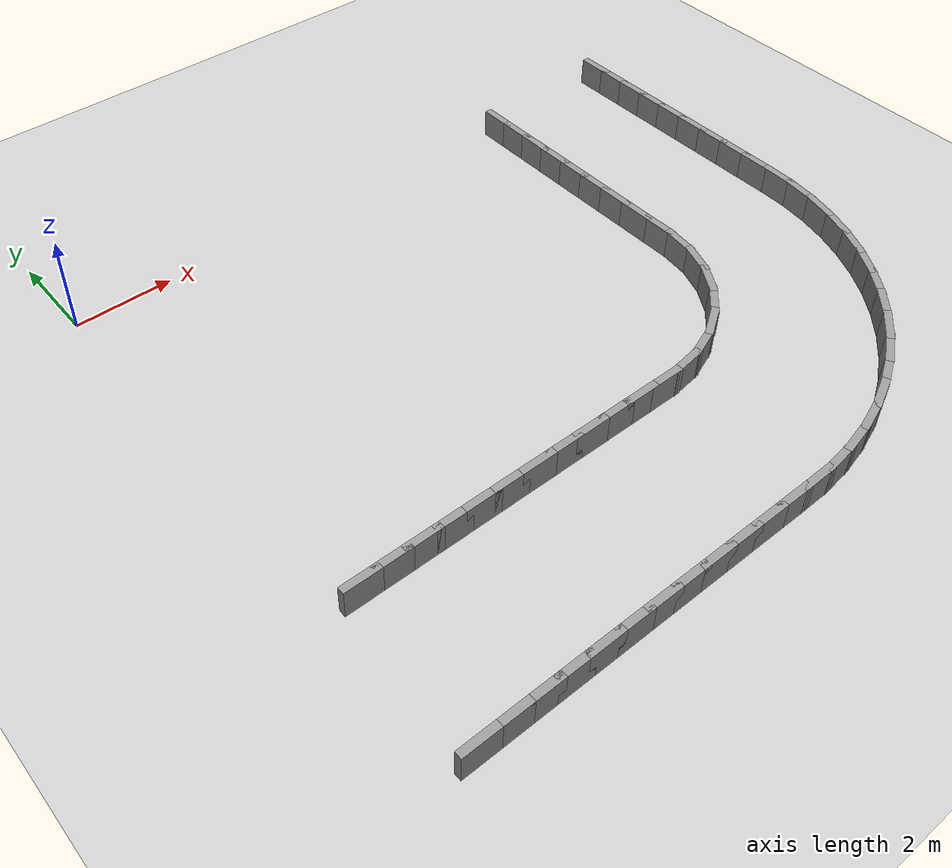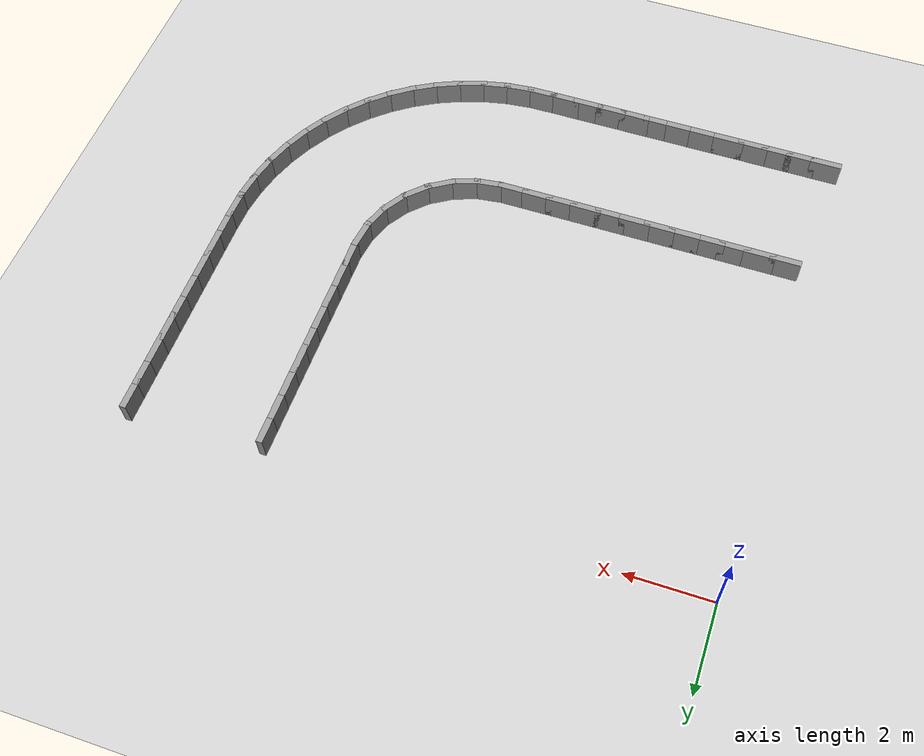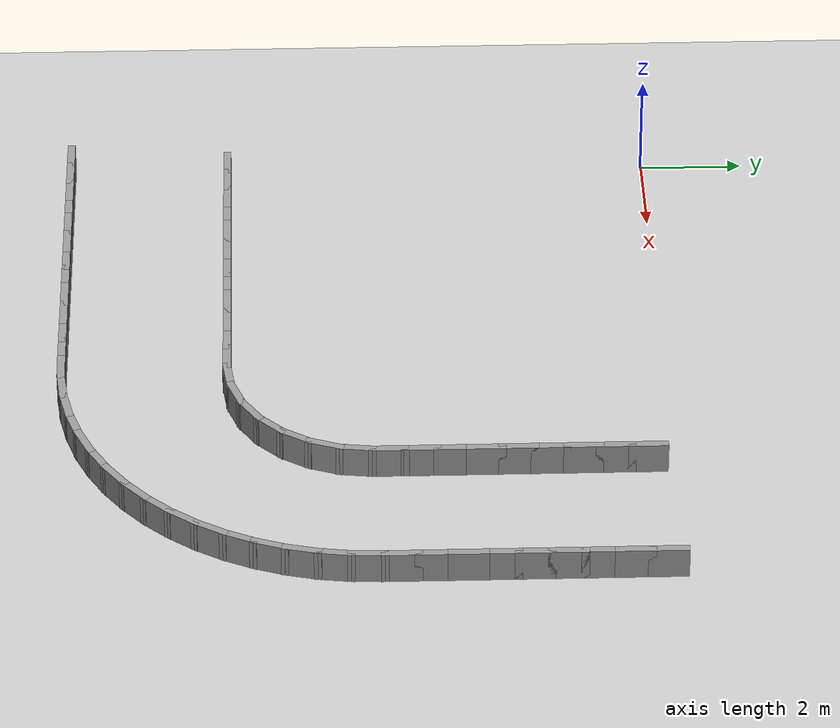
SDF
<sdf version="1.7">
 <world name="default">
  <model name="ground_plane">
   <static>1</static>
   <link name="link">
    <collision name="collision">
     <geometry><plane><normal>0 0 1</normal><size>100 100</size></plane></geometry>
     <surface><friction><ode><mu>100</mu><mu2>50</mu2></ode></friction></surface>
    </collision>
    <visual name="visual">
     <cast_shadows>0</cast_shadows>
     <geometry><plane><normal>0 0 1</normal><size>100 100</size></plane></geometry>
     <material>
      <script><uri>file://media/materials/scripts/gazebo.material</uri><name>Gazebo/Grey</name></script>
     </material>
    </visual>
   </link>
  </model>
  <model name="rand_rrect_01">
   <link name="Wall_77">
    <collision name="Wall_77_Collision">
     <geometry><box><size>0.7500 0.1500 0.6000</size></box></geometry>
     <pose>0 0 0.3000 0 -0 0</pose>
    </collision>
    <visual name="Wall_77_Visual">
     <pose>0 0 0.3000 0 -0 0</pose>
     <geometry><box><size>0.7500 0.1500 0.6000</size></box></geometry>
     <material>
      <script><uri>file://media/materials/scripts/gazebo.material</uri><name>Gazebo/Grey</name></script>
      <ambient>1 1 1 1</ambient>
     </material>
    </visual>
    <pose>0.4717 -8.3232 0 0 -0 0.00000</pose>
   </link>
   <link name="Wall_78">
    <collision name="Wall_78_Collision">
     <geometry><box><size>0.7500 0.1500 0.6000</size></box></geometry>
     <pose>0 0 0.3000 0 -0 0</pose>
    </collision>
    <visual name="Wall_78_Visual">
     <pose>0 0 0.3000 0 -0 0</pose>
     <geometry><box><size>0.7500 0.1500 0.6000</size></box></geometry>
     <material>
      <script><uri>file://media/materials/scripts/gazebo.material</uri><name>Gazebo/Grey</name></script>
      <ambient>1 1 1 1</ambient>
     </material>
    </visual>
    <pose>1.0717 -8.3232 0 0 -0 0.00000</pose>
   </link>
   <link name="Wall_79">
    <collision name="Wall_79_Collision">
     <geometry><box><size>0.7500 0.1500 0.6000</size></box></geometry>
     <pose>0 0 0.3000 0 -0 0</pose>
    </collision>
    <visual name="Wall_79_Visual">
     <pose>0 0 0.3000 0 -0 0</pose>
     <geometry><box><size>0.7500 0.1500 0.6000</size></box></geometry>
     <material>
      <script><uri>file://media/materials/scripts/gazebo.material</uri><name>Gazebo/Grey</name></script>
      <ambient>1 1 1 1</ambient>
     </material>
    </visual>
    <pose>1.6717 -8.3232 0 0 -0 0.00000</pose>
   </link>
   <link name="Wall_80">
    <collision name="Wall_80_Collision">
     <geometry><box><size>0.7500 0.1500 0.6000</size></box></geometry>
     <pose>0 0 0.3000 0 -0 0</pose>
    </collision>
    <visual name="Wall_80_Visual">
     <pose>0 0 0.3000 0 -0 0</pose>
     <geometry><box><size>0.7500 0.1500 0.6000</size></box></geometry>
     <material>
      <script><uri>file://media/materials/scripts/gazebo.material</uri><name>Gazebo/Grey</name></script>
      <ambient>1 1 1 1</ambient>
     </material>
    </visual>
    <pose>2.2717 -8.3232 0 0 -0 0.00000</pose>
   </link>
   <link name="Wall_81">
    <collision name="Wall_81_Collision">
     <geometry><box><size>0.7500 0.1500 0.6000</size></box></geometry>
     <pose>0 0 0.3000 0 -0 0</pose>
    </collision>
    <visual name="Wall_81_Visual">
     <pose>0 0 0.3000 0 -0 0</pose>
     <geometry><box><size>0.7500 0.1500 0.6000</size></box></geometry>
     <material>
      <script><uri>file://media/materials/scripts/gazebo.material</uri><name>Gazebo/Grey</name></script>
      <ambient>1 1 1 1</ambient>
     </material>
    </visual>
    <pose>2.8717 -8.3232 0 0 -0 0.00000</pose>
   </link>
   <link name="Wall_82">
    <collision name="Wall_82_Collision">
     <geometry><box><size>0.7500 0.1500 0.6000</size></box></geometry>
     <pose>0 0 0.3000 0 -0 0</pose>
    </collision>
    <visual name="Wall_82_Visual">
     <pose>0 0 0.3000 0 -0 0</pose>
     <geometry><box><size>0.7500 0.1500 0.6000</size></box></geometry>
     <material>
      <script><uri>file://media/materials/scripts/gazebo.material</uri><name>Gazebo/Grey</name></script>
      <ambient>1 1 1 1</ambient>
     </material>
    </visual>
    <pose>3.4717 -8.3232 0 0 -0 0.00000</pose>
   </link>
   <link name="Wall_83">
    <collision name="Wall_83_Collision">
     <geometry><box><size>0.7500 0.1500 0.6000</size></box></geometry>
     <pose>0 0 0.3000 0 -0 0</pose>
    </collision>
    <visual name="Wall_83_Visual">
     <pose>0 0 0.3000 0 -0 0</pose>
     <geometry><box><size>0.7500 0.1500 0.6000</size></box></geometry>
     <material>
      <script><uri>file://media/materials/scripts/gazebo.material</uri><name>Gazebo/Grey</name></script>
      <ambient>1 1 1 1</ambient>
     </material>
    </visual>
    <pose>4.0717 -8.3232 0 0 -0 0.00000</pose>
   </link>
   <link name="Wall_84">
    <collision name="Wall_84_Collision">
     <geometry><box><size>0.7500 0.1500 0.6000</size></box></geometry>
     <pose>0 0 0.3000 0 -0 0</pose>
    </collision>
    <visual name="Wall_84_Visual">
     <pose>0 0 0.3000 0 -0 0</pose>
     <geometry><box><size>0.7500 0.1500 0.6000</size></box></geometry>
     <material>
      <script><uri>file://media/materials/scripts/gazebo.material</uri><name>Gazebo/Grey</name></script>
      <ambient>1 1 1 1</ambient>
     </material>
    </visual>
    <pose>4.6717 -8.3232 0 0 -0 0.00000</pose>
   </link>
   <link name="Wall_85">
    <collision name="Wall_85_Collision">
     <geometry><box><size>0.7500 0.1500 0.6000</size></box></geometry>
     <pose>0 0 0.3000 0 -0 0</pose>
    </collision>
    <visual name="Wall_85_Visual">
     <pose>0 0 0.3000 0 -0 0</pose>
     <geometry><box><size>0.7500 0.1500 0.6000</size></box></geometry>
     <material>
      <script><uri>file://media/materials/scripts/gazebo.material</uri><name>Gazebo/Grey</name></script>
      <ambient>1 1 1 1</ambient>
     </material>
    </visual>
    <pose>5.2717 -8.3232 0 0 -0 0.00000</pose>
   </link>
   <link name="Wall_86">
    <collision name="Wall_86_Collision">
     <geometry><box><size>0.7500 0.1500 0.6000</size></box></geometry>
     <pose>0 0 0.3000 0 -0 0</pose>
    </collision>
    <visual name="Wall_86_Visual">
     <pose>0 0 0.3000 0 -0 0</pose>
     <geometry><box><size>0.7500 0.1500 0.6000</size></box></geometry>
     <material>
      <script><uri>file://media/materials/scripts/gazebo.material</uri><name>Gazebo/Grey</name></script>
      <ambient>1 1 1 1</ambient>
     </material>
    </visual>
    <pose>5.8717 -8.3232 0 0 -0 0.00000</pose>
   </link>
   <link name="Wall_87">
    <collision name="Wall_87_Collision">
     <geometry><box><size>0.7500 0.1500 0.6000</size></box></geometry>
     <pose>0 0 0.3000 0 -0 0</pose>
    </collision>
    <visual name="Wall_87_Visual">
     <pose>0 0 0.3000 0 -0 0</pose>
     <geometry><box><size>0.7500 0.1500 0.6000</size></box></geometry>
     <material>
      <script><uri>file://media/materials/scripts/gazebo.material</uri><name>Gazebo/Grey</name></script>
      <ambient>1 1 1 1</ambient>
     </material>
    </visual>
    <pose>6.4717 -8.3232 0 0 -0 0.00000</pose>
   </link>
   <link name="Wall_88">
    <collision name="Wall_88_Collision">
     <geometry><box><size>0.7500 0.1500 0.6000</size></box></geometry>
     <pose>0 0 0.3000 0 -0 0</pose>
    </collision>
    <visual name="Wall_88_Visual">
     <pose>0 0 0.3000 0 -0 0</pose>
     <geometry><box><size>0.7500 0.1500 0.6000</size></box></geometry>
     <material>
      <script><uri>file://media/materials/scripts/gazebo.material</uri><name>Gazebo/Grey</name></script>
      <ambient>1 1 1 1</ambient>
     </material>
    </visual>
    <pose>7.0717 -8.3230 0 0 -0 0.00093</pose>
   </link>
   <link name="Wall_89">
    <collision name="Wall_89_Collision">
     <geometry><box><size>0.7488 0.1500 0.6000</size></box></geometry>
     <pose>0 0 0.3000 0 -0 0</pose>
    </collision>
    <visual name="Wall_89_Visual">
     <pose>0 0 0.3000 0 -0 0</pose>
     <geometry><box><size>0.7488 0.1500 0.6000</size></box></geometry>
     <material>
      <script><uri>file://media/materials/scripts/gazebo.material</uri><name>Gazebo/Grey</name></script>
      <ambient>1 1 1 1</ambient>
     </material>
    </visual>
    <pose>7.6686 -8.2840 0 0 -0 0.12955</pose>
   </link>
   <link name="Wall_90">
    <collision name="Wall_90_Collision">
     <geometry><box><size>0.7488 0.1500 0.6000</size></box></geometry>
     <pose>0 0 0.3000 0 -0 0</pose>
    </collision>
    <visual name="Wall_90_Visual">
     <pose>0 0 0.3000 0 -0 0</pose>
     <geometry><box><size>0.7488 0.1500 0.6000</size></box></geometry>
     <material>
      <script><uri>file://media/materials/scripts/gazebo.material</uri><name>Gazebo/Grey</name></script>
      <ambient>1 1 1 1</ambient>
     </material>
    </visual>
    <pose>8.2469 -8.1431 0 0 -0 0.34855</pose>
   </link>
   <link name="Wall_91">
    <collision name="Wall_91_Collision">
     <geometry><box><size>0.7488 0.1500 0.6000</size></box></geometry>
     <pose>0 0 0.3000 0 -0 0</pose>
    </collision>
    <visual name="Wall_91_Visual">
     <pose>0 0 0.3000 0 -0 0</pose>
     <geometry><box><size>0.7488 0.1500 0.6000</size></box></geometry>
     <material>
      <script><uri>file://media/materials/scripts/gazebo.material</uri><name>Gazebo/Grey</name></script>
      <ambient>1 1 1 1</ambient>
     </material>
    </visual>
    <pose>8.7808 -7.8799 0 0 -0 0.56755</pose>
   </link>
   <link name="Wall_92">
    <collision name="Wall_92_Collision">
     <geometry><box><size>0.7488 0.1500 0.6000</size></box></geometry>
     <pose>0 0 0.3000 0 -0 0</pose>
    </collision>
    <visual name="Wall_92_Visual">
     <pose>0 0 0.3000 0 -0 0</pose>
     <geometry><box><size>0.7488 0.1500 0.6000</size></box></geometry>
     <material>
      <script><uri>file://media/materials/scripts/gazebo.material</uri><name>Gazebo/Grey</name></script>
      <ambient>1 1 1 1</ambient>
     </material>
    </visual>
    <pose>9.2447 -7.5070 0 0 -0 0.78653</pose>
   </link>
   <link name="Wall_93">
    <collision name="Wall_93_Collision">
     <geometry><box><size>0.7488 0.1500 0.6000</size></box></geometry>
     <pose>0 0 0.3000 0 -0 0</pose>
    </collision>
    <visual name="Wall_93_Visual">
     <pose>0 0 0.3000 0 -0 0</pose>
     <geometry><box><size>0.7488 0.1500 0.6000</size></box></geometry>
     <material>
      <script><uri>file://media/materials/scripts/gazebo.material</uri><name>Gazebo/Grey</name></script>
      <ambient>1 1 1 1</ambient>
     </material>
    </visual>
    <pose>9.6165 -7.0422 0 0 -0 1.00553</pose>
   </link>
   <link name="Wall_94">
    <collision name="Wall_94_Collision">
     <geometry><box><size>0.7488 0.1500 0.6000</size></box></geometry>
     <pose>0 0 0.3000 0 -0 0</pose>
    </collision>
    <visual name="Wall_94_Visual">
     <pose>0 0 0.3000 0 -0 0</pose>
     <geometry><box><size>0.7488 0.1500 0.6000</size></box></geometry>
     <material>
      <script><uri>file://media/materials/scripts/gazebo.material</uri><name>Gazebo/Grey</name></script>
      <ambient>1 1 1 1</ambient>
     </material>
    </visual>
    <pose>9.8785 -6.5077 0 0 -0 1.22452</pose>
   </link>
   <link name="Wall_95">
    <collision name="Wall_95_Collision">
     <geometry><box><size>0.7488 0.1500 0.6000</size></box></geometry>
     <pose>0 0 0.3000 0 -0 0</pose>
    </collision>
    <visual name="Wall_95_Visual">
     <pose>0 0 0.3000 0 -0 0</pose>
     <geometry><box><size>0.7488 0.1500 0.6000</size></box></geometry>
     <material>
      <script><uri>file://media/materials/scripts/gazebo.material</uri><name>Gazebo/Grey</name></script>
      <ambient>1 1 1 1</ambient>
     </material>
    </visual>
    <pose>10.0181 -5.9291 0 0 -0 1.44351</pose>
   </link>
   <link name="Wall_96">
    <collision name="Wall_96_Collision">
     <geometry><box><size>0.7500 0.1500 0.6000</size></box></geometry>
     <pose>0 0 0.3000 0 -0 0</pose>
    </collision>
    <visual name="Wall_96_Visual">
     <pose>0 0 0.3000 0 -0 0</pose>
     <geometry><box><size>0.7500 0.1500 0.6000</size></box></geometry>
     <material>
      <script><uri>file://media/materials/scripts/gazebo.material</uri><name>Gazebo/Grey</name></script>
      <ambient>1 1 1 1</ambient>
     </material>
    </visual>
    <pose>10.0564 -5.3322 0 0 -0 1.57007</pose>
   </link>
   <link name="Wall_97">
    <collision name="Wall_97_Collision">
     <geometry><box><size>0.7500 0.1500 0.6000</size></box></geometry>
     <pose>0 0 0.3000 0 -0 0</pose>
    </collision>
    <visual name="Wall_97_Visual">
     <pose>0 0 0.3000 0 -0 0</pose>
     <geometry><box><size>0.7500 0.1500 0.6000</size></box></geometry>
     <material>
      <script><uri>file://media/materials/scripts/gazebo.material</uri><name>Gazebo/Grey</name></script>
      <ambient>1 1 1 1</ambient>
     </material>
    </visual>
    <pose>10.0566 -4.7322 0 0 -0 1.57080</pose>
   </link>
   <link name="Wall_98">
    <collision name="Wall_98_Collision">
     <geometry><box><size>0.7500 0.1500 0.6000</size></box></geometry>
     <pose>0 0 0.3000 0 -0 0</pose>
    </collision>
    <visual name="Wall_98_Visual">
     <pose>0 0 0.3000 0 -0 0</pose>
     <geometry><box><size>0.7500 0.1500 0.6000</size></box></geometry>
     <material>
      <script><uri>file://media/materials/scripts/gazebo.material</uri><name>Gazebo/Grey</name></script>
      <ambient>1 1 1 1</ambient>
     </material>
    </visual>
    <pose>10.0566 -4.1322 0 0 -0 1.57080</pose>
   </link>
   <link name="Wall_99">
    <collision name="Wall_99_Collision">
     <geometry><box><size>0.7500 0.1500 0.6000</size></box></geometry>
     <pose>0 0 0.3000 0 -0 0</pose>
    </collision>
    <visual name="Wall_99_Visual">
     <pose>0 0 0.3000 0 -0 0</pose>
     <geometry><box><size>0.7500 0.1500 0.6000</size></box></geometry>
     <material>
      <script><uri>file://media/materials/scripts/gazebo.material</uri><name>Gazebo/Grey</name></script>
      <ambient>1 1 1 1</ambient>
     </material>
    </visual>
    <pose>10.0566 -3.5322 0 0 -0 1.57080</pose>
   </link>
   <link name="Wall_100">
    <collision name="Wall_100_Collision">
     <geometry><box><size>0.7500 0.1500 0.6000</size></box></geometry>
     <pose>0 0 0.3000 0 -0 0</pose>
    </collision>
    <visual name="Wall_100_Visual">
     <pose>0 0 0.3000 0 -0 0</pose>
     <geometry><box><size>0.7500 0.1500 0.6000</size></box></geometry>
     <material>
      <script><uri>file://media/materials/scripts/gazebo.material</uri><name>Gazebo/Grey</name></script>
      <ambient>1 1 1 1</ambient>
     </material>
    </visual>
    <pose>10.0566 -2.9322 0 0 -0 1.57080</pose>
   </link>
   <link name="Wall_101">
    <collision name="Wall_101_Collision">
     <geometry><box><size>0.7500 0.1500 0.6000</size></box></geometry>
     <pose>0 0 0.3000 0 -0 0</pose>
    </collision>
    <visual name="Wall_101_Visual">
     <pose>0 0 0.3000 0 -0 0</pose>
     <geometry><box><size>0.7500 0.1500 0.6000</size></box></geometry>
     <material>
      <script><uri>file://media/materials/scripts/gazebo.material</uri><name>Gazebo/Grey</name></script>
      <ambient>1 1 1 1</ambient>
     </material>
    </visual>
    <pose>10.0566 -2.3322 0 0 -0 1.57080</pose>
   </link>
   <link name="Wall_102">
    <collision name="Wall_102_Collision">
     <geometry><box><size>0.7500 0.1500 0.6000</size></box></geometry>
     <pose>0 0 0.3000 0 -0 0</pose>
    </collision>
    <visual name="Wall_102_Visual">
     <pose>0 0 0.3000 0 -0 0</pose>
     <geometry><box><size>0.7500 0.1500 0.6000</size></box></geometry>
     <material>
      <script><uri>file://media/materials/scripts/gazebo.material</uri><name>Gazebo/Grey</name></script>
      <ambient>1 1 1 1</ambient>
     </material>
    </visual>
    <pose>10.0566 -1.7322 0 0 -0 1.57080</pose>
   </link>
   <link name="Wall_103">
    <collision name="Wall_103_Collision">
     <geometry><box><size>0.7500 0.1500 0.6000</size></box></geometry>
     <pose>0 0 0.3000 0 -0 0</pose>
    </collision>
    <visual name="Wall_103_Visual">
     <pose>0 0 0.3000 0 -0 0</pose>
     <geometry><box><size>0.7500 0.1500 0.6000</size></box></geometry>
     <material>
      <script><uri>file://media/materials/scripts/gazebo.material</uri><name>Gazebo/Grey</name></script>
      <ambient>1 1 1 1</ambient>
     </material>
    </visual>
    <pose>10.0566 -1.1322 0 0 -0 1.57080</pose>
   </link>
   <link name="Wall_104">
    <collision name="Wall_104_Collision">
     <geometry><box><size>0.7500 0.1500 0.6000</size></box></geometry>
     <pose>0 0 0.3000 0 -0 0</pose>
    </collision>
    <visual name="Wall_104_Visual">
     <pose>0 0 0.3000 0 -0 0</pose>
     <geometry><box><size>0.7500 0.1500 0.6000</size></box></geometry>
     <material>
      <script><uri>file://media/materials/scripts/gazebo.material</uri><name>Gazebo/Grey</name></script>
      <ambient>1 1 1 1</ambient>
     </material>
    </visual>
    <pose>10.0566 -0.5322 0 0 -0 1.57080</pose>
   </link>
   <link name="Wall_215">
    <collision name="Wall_215_Collision">
     <geometry><box><size>0.7500 0.1500 0.6000</size></box></geometry>
     <pose>0 0 0.3000 0 -0 0</pose>
    </collision>
    <visual name="Wall_215_Visual">
     <pose>0 0 0.3000 0 -0 0</pose>
     <geometry><box><size>0.7500 0.1500 0.6000</size></box></geometry>
     <material>
      <script><uri>file://media/materials/scripts/gazebo.material</uri><name>Gazebo/Grey</name></script>
      <ambient>1 1 1 1</ambient>
     </material>
    </visual>
    <pose>0.1410 -11.4492 0 0 -0 0.00000</pose>
   </link>
   <link name="Wall_216">
    <collision name="Wall_216_Collision">
     <geometry><box><size>0.7500 0.1500 0.6000</size></box></geometry>
     <pose>0 0 0.3000 0 -0 0</pose>
    </collision>
    <visual name="Wall_216_Visual">
     <pose>0 0 0.3000 0 -0 0</pose>
     <geometry><box><size>0.7500 0.1500 0.6000</size></box></geometry>
     <material>
      <script><uri>file://media/materials/scripts/gazebo.material</uri><name>Gazebo/Grey</name></script>
      <ambient>1 1 1 1</ambient>
     </material>
    </visual>
    <pose>0.7410 -11.4492 0 0 -0 0.00000</pose>
   </link>
   <link name="Wall_217">
    <collision name="Wall_217_Collision">
     <geometry><box><size>0.7500 0.1500 0.6000</size></box></geometry>
     <pose>0 0 0.3000 0 -0 0</pose>
    </collision>
    <visual name="Wall_217_Visual">
     <pose>0 0 0.3000 0 -0 0</pose>
     <geometry><box><size>0.7500 0.1500 0.6000</size></box></geometry>
     <material>
      <script><uri>file://media/materials/scripts/gazebo.material</uri><name>Gazebo/Grey</name></script>
      <ambient>1 1 1 1</ambient>
     </material>
    </visual>
    <pose>1.3410 -11.4492 0 0 -0 0.00000</pose>
   </link>
   <link name="Wall_218">
    <collision name="Wall_218_Collision">
     <geometry><box><size>0.7500 0.1500 0.6000</size></box></geometry>
     <pose>0 0 0.3000 0 -0 0</pose>
    </collision>
    <visual name="Wall_218_Visual">
     <pose>0 0 0.3000 0 -0 0</pose>
     <geometry><box><size>0.7500 0.1500 0.6000</size></box></geometry>
     <material>
      <script><uri>file://media/materials/scripts/gazebo.material</uri><name>Gazebo/Grey</name></script>
      <ambient>1 1 1 1</ambient>
     </material>
    </visual>
    <pose>1.9410 -11.4492 0 0 -0 0.00000</pose>
   </link>
   <link name="Wall_219">
    <collision name="Wall_219_Collision">
     <geometry><box><size>0.7500 0.1500 0.6000</size></box></geometry>
     <pose>0 0 0.3000 0 -0 0</pose>
    </collision>
    <visual name="Wall_219_Visual">
     <pose>0 0 0.3000 0 -0 0</pose>
     <geometry><box><size>0.7500 0.1500 0.6000</size></box></geometry>
     <material>
      <script><uri>file://media/materials/scripts/gazebo.material</uri><name>Gazebo/Grey</name></script>
      <ambient>1 1 1 1</ambient>
     </material>
    </visual>
    <pose>2.5410 -11.4492 0 0 -0 0.00000</pose>
   </link>
   <link name="Wall_220">
    <collision name="Wall_220_Collision">
     <geometry><box><size>0.7500 0.1500 0.6000</size></box></geometry>
     <pose>0 0 0.3000 0 -0 0</pose>
    </collision>
    <visual name="Wall_220_Visual">
     <pose>0 0 0.3000 0 -0 0</pose>
     <geometry><box><size>0.7500 0.1500 0.6000</size></box></geometry>
     <material>
      <script><uri>file://media/materials/scripts/gazebo.material</uri><name>Gazebo/Grey</name></script>
      <ambient>1 1 1 1</ambient>
     </material>
    </visual>
    <pose>3.1410 -11.4492 0 0 -0 0.00000</pose>
   </link>
   <link name="Wall_221">
    <collision name="Wall_221_Collision">
     <geometry><box><size>0.7500 0.1500 0.6000</size></box></geometry>
     <pose>0 0 0.3000 0 -0 0</pose>
    </collision>
    <visual name="Wall_221_Visual">
     <pose>0 0 0.3000 0 -0 0</pose>
     <geometry><box><size>0.7500 0.1500 0.6000</size></box></geometry>
     <material>
      <script><uri>file://media/materials/scripts/gazebo.material</uri><name>Gazebo/Grey</name></script>
      <ambient>1 1 1 1</ambient>
     </material>
    </visual>
    <pose>3.7410 -11.4492 0 0 -0 0.00000</pose>
   </link>
   <link name="Wall_222">
    <collision name="Wall_222_Collision">
     <geometry><box><size>0.7500 0.1500 0.6000</size></box></geometry>
     <pose>0 0 0.3000 0 -0 0</pose>
    </collision>
    <visual name="Wall_222_Visual">
     <pose>0 0 0.3000 0 -0 0</pose>
     <geometry><box><size>0.7500 0.1500 0.6000</size></box></geometry>
     <material>
      <script><uri>file://media/materials/scripts/gazebo.material</uri><name>Gazebo/Grey</name></script>
      <ambient>1 1 1 1</ambient>
     </material>
    </visual>
    <pose>4.3410 -11.4492 0 0 -0 0.00000</pose>
   </link>
   <link name="Wall_223">
    <collision name="Wall_223_Collision">
     <geometry><box><size>0.7500 0.1500 0.6000</size></box></geometry>
     <pose>0 0 0.3000 0 -0 0</pose>
    </collision>
    <visual name="Wall_223_Visual">
     <pose>0 0 0.3000 0 -0 0</pose>
     <geometry><box><size>0.7500 0.1500 0.6000</size></box></geometry>
     <material>
      <script><uri>file://media/materials/scripts/gazebo.material</uri><name>Gazebo/Grey</name></script>
      <ambient>1 1 1 1</ambient>
     </material>
    </visual>
    <pose>4.9410 -11.4492 0 0 -0 0.00000</pose>
   </link>
   <link name="Wall_224">
    <collision name="Wall_224_Collision">
     <geometry><box><size>0.7500 0.1500 0.6000</size></box></geometry>
     <pose>0 0 0.3000 0 -0 0</pose>
    </collision>
    <visual name="Wall_224_Visual">
     <pose>0 0 0.3000 0 -0 0</pose>
     <geometry><box><size>0.7500 0.1500 0.6000</size></box></geometry>
     <material>
      <script><uri>file://media/materials/scripts/gazebo.material</uri><name>Gazebo/Grey</name></script>
      <ambient>1 1 1 1</ambient>
     </material>
    </visual>
    <pose>5.5410 -11.4492 0 0 -0 0.00000</pose>
   </link>
   <link name="Wall_225">
    <collision name="Wall_225_Collision">
     <geometry><box><size>0.7500 0.1500 0.6000</size></box></geometry>
     <pose>0 0 0.3000 0 -0 0</pose>
    </collision>
    <visual name="Wall_225_Visual">
     <pose>0 0 0.3000 0 -0 0</pose>
     <geometry><box><size>0.7500 0.1500 0.6000</size></box></geometry>
     <material>
      <script><uri>file://media/materials/scripts/gazebo.material</uri><name>Gazebo/Grey</name></script>
      <ambient>1 1 1 1</ambient>
     </material>
    </visual>
    <pose>6.1410 -11.4492 0 0 -0 0.00000</pose>
   </link>
   <link name="Wall_226">
    <collision name="Wall_226_Collision">
     <geometry><box><size>0.7500 0.1500 0.6000</size></box></geometry>
     <pose>0 0 0.3000 0 -0 0</pose>
    </collision>
    <visual name="Wall_226_Visual">
     <pose>0 0 0.3000 0 -0 0</pose>
     <geometry><box><size>0.7500 0.1500 0.6000</size></box></geometry>
     <material>
      <script><uri>file://media/materials/scripts/gazebo.material</uri><name>Gazebo/Grey</name></script>
      <ambient>1 1 1 1</ambient>
     </material>
    </visual>
    <pose>6.7410 -11.4492 0 0 -0 0.00000</pose>
   </link>
   <link name="Wall_227">
    <collision name="Wall_227_Collision">
     <geometry><box><size>0.7499 0.1500 0.6000</size></box></geometry>
     <pose>0 0 0.3000 0 -0 0</pose>
    </collision>
    <visual name="Wall_227_Visual">
     <pose>0 0 0.3000 0 -0 0</pose>
     <geometry><box><size>0.7499 0.1500 0.6000</size></box></geometry>
     <material>
      <script><uri>file://media/materials/scripts/gazebo.material</uri><name>Gazebo/Grey</name></script>
      <ambient>1 1 1 1</ambient>
     </material>
    </visual>
    <pose>7.3409 -11.4447 0 0 -0 0.01495</pose>
   </link>
   <link name="Wall_228">
    <collision name="Wall_228_Collision">
     <geometry><box><size>0.7497 0.1500 0.6000</size></box></geometry>
     <pose>0 0 0.3000 0 -0 0</pose>
    </collision>
    <visual name="Wall_228_Visual">
     <pose>0 0 0.3000 0 -0 0</pose>
     <geometry><box><size>0.7497 0.1500 0.6000</size></box></geometry>
     <material>
      <script><uri>file://media/materials/scripts/gazebo.material</uri><name>Gazebo/Grey</name></script>
      <ambient>1 1 1 1</ambient>
     </material>
    </visual>
    <pose>7.9390 -11.4084 0 0 -0 0.10640</pose>
   </link>
   <link name="Wall_229">
    <collision name="Wall_229_Collision">
     <geometry><box><size>0.7497 0.1500 0.6000</size></box></geometry>
     <pose>0 0 0.3000 0 -0 0</pose>
    </collision>
    <visual name="Wall_229_Visual">
     <pose>0 0 0.3000 0 -0 0</pose>
     <geometry><box><size>0.7497 0.1500 0.6000</size></box></geometry>
     <material>
      <script><uri>file://media/materials/scripts/gazebo.material</uri><name>Gazebo/Grey</name></script>
      <ambient>1 1 1 1</ambient>
     </material>
    </visual>
    <pose>8.5305 -11.3144 0 0 -0 0.20872</pose>
   </link>
   <link name="Wall_230">
    <collision name="Wall_230_Collision">
     <geometry><box><size>0.7497 0.1500 0.6000</size></box></geometry>
     <pose>0 0 0.3000 0 -0 0</pose>
    </collision>
    <visual name="Wall_230_Visual">
     <pose>0 0 0.3000 0 -0 0</pose>
     <geometry><box><size>0.7497 0.1500 0.6000</size></box></geometry>
     <material>
      <script><uri>file://media/materials/scripts/gazebo.material</uri><name>Gazebo/Grey</name></script>
      <ambient>1 1 1 1</ambient>
     </material>
    </visual>
    <pose>9.1094 -11.1605 0 0 -0 0.31100</pose>
   </link>
   <link name="Wall_231">
    <collision name="Wall_231_Collision">
     <geometry><box><size>0.7497 0.1500 0.6000</size></box></geometry>
     <pose>0 0 0.3000 0 -0 0</pose>
    </collision>
    <visual name="Wall_231_Visual">
     <pose>0 0 0.3000 0 -0 0</pose>
     <geometry><box><size>0.7497 0.1500 0.6000</size></box></geometry>
     <material>
      <script><uri>file://media/materials/scripts/gazebo.material</uri><name>Gazebo/Grey</name></script>
      <ambient>1 1 1 1</ambient>
     </material>
    </visual>
    <pose>9.6695 -10.9483 0 0 -0 0.41327</pose>
   </link>
   <link name="Wall_232">
    <collision name="Wall_232_Collision">
     <geometry><box><size>0.7497 0.1500 0.6000</size></box></geometry>
     <pose>0 0 0.3000 0 -0 0</pose>
    </collision>
    <visual name="Wall_232_Visual">
     <pose>0 0 0.3000 0 -0 0</pose>
     <geometry><box><size>0.7497 0.1500 0.6000</size></box></geometry>
     <material>
      <script><uri>file://media/materials/scripts/gazebo.material</uri><name>Gazebo/Grey</name></script>
      <ambient>1 1 1 1</ambient>
     </material>
    </visual>
    <pose>10.2050 -10.6801 0 0 -0 0.51556</pose>
   </link>
   <link name="Wall_233">
    <collision name="Wall_233_Collision">
     <geometry><box><size>0.7497 0.1500 0.6000</size></box></geometry>
     <pose>0 0 0.3000 0 -0 0</pose>
    </collision>
    <visual name="Wall_233_Visual">
     <pose>0 0 0.3000 0 -0 0</pose>
     <geometry><box><size>0.7497 0.1500 0.6000</size></box></geometry>
     <material>
      <script><uri>file://media/materials/scripts/gazebo.material</uri><name>Gazebo/Grey</name></script>
      <ambient>1 1 1 1</ambient>
     </material>
    </visual>
    <pose>10.7103 -10.3585 0 0 -0 0.61787</pose>
   </link>
   <link name="Wall_234">
    <collision name="Wall_234_Collision">
     <geometry><box><size>0.7497 0.1500 0.6000</size></box></geometry>
     <pose>0 0 0.3000 0 -0 0</pose>
    </collision>
    <visual name="Wall_234_Visual">
     <pose>0 0 0.3000 0 -0 0</pose>
     <geometry><box><size>0.7497 0.1500 0.6000</size></box></geometry>
     <material>
      <script><uri>file://media/materials/scripts/gazebo.material</uri><name>Gazebo/Grey</name></script>
      <ambient>1 1 1 1</ambient>
     </material>
    </visual>
    <pose>11.1802 -9.9870 0 0 -0 0.72015</pose>
   </link>
   <link name="Wall_235">
    <collision name="Wall_235_Collision">
     <geometry><box><size>0.7497 0.1500 0.6000</size></box></geometry>
     <pose>0 0 0.3000 0 -0 0</pose>
    </collision>
    <visual name="Wall_235_Visual">
     <pose>0 0 0.3000 0 -0 0</pose>
     <geometry><box><size>0.7497 0.1500 0.6000</size></box></geometry>
     <material>
      <script><uri>file://media/materials/scripts/gazebo.material</uri><name>Gazebo/Grey</name></script>
      <ambient>1 1 1 1</ambient>
     </material>
    </visual>
    <pose>11.6096 -9.5695 0 0 -0 0.82242</pose>
   </link>
   <link name="Wall_236">
    <collision name="Wall_236_Collision">
     <geometry><box><size>0.7497 0.1500 0.6000</size></box></geometry>
     <pose>0 0 0.3000 0 -0 0</pose>
    </collision>
    <visual name="Wall_236_Visual">
     <pose>0 0 0.3000 0 -0 0</pose>
     <geometry><box><size>0.7497 0.1500 0.6000</size></box></geometry>
     <material>
      <script><uri>file://media/materials/scripts/gazebo.material</uri><name>Gazebo/Grey</name></script>
      <ambient>1 1 1 1</ambient>
     </material>
    </visual>
    <pose>11.9942 -9.1103 0 0 -0 0.92473</pose>
   </link>
   <link name="Wall_237">
    <collision name="Wall_237_Collision">
     <geometry><box><size>0.7497 0.1500 0.6000</size></box></geometry>
     <pose>0 0 0.3000 0 -0 0</pose>
    </collision>
    <visual name="Wall_237_Visual">
     <pose>0 0 0.3000 0 -0 0</pose>
     <geometry><box><size>0.7497 0.1500 0.6000</size></box></geometry>
     <material>
      <script><uri>file://media/materials/scripts/gazebo.material</uri><name>Gazebo/Grey</name></script>
      <ambient>1 1 1 1</ambient>
     </material>
    </visual>
    <pose>12.3299 -8.6143 0 0 -0 1.02702</pose>
   </link>
   <link name="Wall_238">
    <collision name="Wall_238_Collision">
     <geometry><box><size>0.7497 0.1500 0.6000</size></box></geometry>
     <pose>0 0 0.3000 0 -0 0</pose>
    </collision>
    <visual name="Wall_238_Visual">
     <pose>0 0 0.3000 0 -0 0</pose>
     <geometry><box><size>0.7497 0.1500 0.6000</size></box></geometry>
     <material>
      <script><uri>file://media/materials/scripts/gazebo.material</uri><name>Gazebo/Grey</name></script>
      <ambient>1 1 1 1</ambient>
     </material>
    </visual>
    <pose>12.6132 -8.0866 0 0 -0 1.12929</pose>
   </link>
   <link name="Wall_239">
    <collision name="Wall_239_Collision">
     <geometry><box><size>0.7497 0.1500 0.6000</size></box></geometry>
     <pose>0 0 0.3000 0 -0 0</pose>
    </collision>
    <visual name="Wall_239_Visual">
     <pose>0 0 0.3000 0 -0 0</pose>
     <geometry><box><size>0.7497 0.1500 0.6000</size></box></geometry>
     <material>
      <script><uri>file://media/materials/scripts/gazebo.material</uri><name>Gazebo/Grey</name></script>
      <ambient>1 1 1 1</ambient>
     </material>
    </visual>
    <pose>12.8411 -7.5327 0 0 -0 1.23157</pose>
   </link>
   <link name="Wall_240">
    <collision name="Wall_240_Collision">
     <geometry><box><size>0.7497 0.1500 0.6000</size></box></geometry>
     <pose>0 0 0.3000 0 -0 0</pose>
    </collision>
    <visual name="Wall_240_Visual">
     <pose>0 0 0.3000 0 -0 0</pose>
     <geometry><box><size>0.7497 0.1500 0.6000</size></box></geometry>
     <material>
      <script><uri>file://media/materials/scripts/gazebo.material</uri><name>Gazebo/Grey</name></script>
      <ambient>1 1 1 1</ambient>
     </material>
    </visual>
    <pose>13.0112 -6.9584 0 0 -0 1.33389</pose>
   </link>
   <link name="Wall_241">
    <collision name="Wall_241_Collision">
     <geometry><box><size>0.7497 0.1500 0.6000</size></box></geometry>
     <pose>0 0 0.3000 0 -0 0</pose>
    </collision>
    <visual name="Wall_241_Visual">
     <pose>0 0 0.3000 0 -0 0</pose>
     <geometry><box><size>0.7497 0.1500 0.6000</size></box></geometry>
     <material>
      <script><uri>file://media/materials/scripts/gazebo.material</uri><name>Gazebo/Grey</name></script>
      <ambient>1 1 1 1</ambient>
     </material>
    </visual>
    <pose>13.1219 -6.3698 0 0 -0 1.43617</pose>
   </link>
   <link name="Wall_242">
    <collision name="Wall_242_Collision">
     <geometry><box><size>0.7498 0.1500 0.6000</size></box></geometry>
     <pose>0 0 0.3000 0 -0 0</pose>
    </collision>
    <visual name="Wall_242_Visual">
     <pose>0 0 0.3000 0 -0 0</pose>
     <geometry><box><size>0.7498 0.1500 0.6000</size></box></geometry>
     <material>
      <script><uri>file://media/materials/scripts/gazebo.material</uri><name>Gazebo/Grey</name></script>
      <ambient>1 1 1 1</ambient>
     </material>
    </visual>
    <pose>13.1723 -5.7729 0 0 -0 1.53670</pose>
   </link>
   <link name="Wall_243">
    <collision name="Wall_243_Collision">
     <geometry><box><size>0.7500 0.1500 0.6000</size></box></geometry>
     <pose>0 0 0.3000 0 -0 0</pose>
    </collision>
    <visual name="Wall_243_Visual">
     <pose>0 0 0.3000 0 -0 0</pose>
     <geometry><box><size>0.7500 0.1500 0.6000</size></box></geometry>
     <material>
      <script><uri>file://media/materials/scripts/gazebo.material</uri><name>Gazebo/Grey</name></script>
      <ambient>1 1 1 1</ambient>
     </material>
    </visual>
    <pose>13.1826 -5.1732 0 0 -0 1.57080</pose>
   </link>
   <link name="Wall_244">
    <collision name="Wall_244_Collision">
     <geometry><box><size>0.7500 0.1500 0.6000</size></box></geometry>
     <pose>0 0 0.3000 0 -0 0</pose>
    </collision>
    <visual name="Wall_244_Visual">
     <pose>0 0 0.3000 0 -0 0</pose>
     <geometry><box><size>0.7500 0.1500 0.6000</size></box></geometry>
     <material>
      <script><uri>file://media/materials/scripts/gazebo.material</uri><name>Gazebo/Grey</name></script>
      <ambient>1 1 1 1</ambient>
     </material>
    </visual>
    <pose>13.1826 -4.5732 0 0 -0 1.57080</pose>
   </link>
   <link name="Wall_245">
    <collision name="Wall_245_Collision">
     <geometry><box><size>0.7500 0.1500 0.6000</size></box></geometry>
     <pose>0 0 0.3000 0 -0 0</pose>
    </collision>
    <visual name="Wall_245_Visual">
     <pose>0 0 0.3000 0 -0 0</pose>
     <geometry><box><size>0.7500 0.1500 0.6000</size></box></geometry>
     <material>
      <script><uri>file://media/materials/scripts/gazebo.material</uri><name>Gazebo/Grey</name></script>
      <ambient>1 1 1 1</ambient>
     </material>
    </visual>
    <pose>13.1826 -3.9732 0 0 -0 1.57080</pose>
   </link>
   <link name="Wall_246">
    <collision name="Wall_246_Collision">
     <geometry><box><size>0.7500 0.1500 0.6000</size></box></geometry>
     <pose>0 0 0.3000 0 -0 0</pose>
    </collision>
    <visual name="Wall_246_Visual">
     <pose>0 0 0.3000 0 -0 0</pose>
     <geometry><box><size>0.7500 0.1500 0.6000</size></box></geometry>
     <material>
      <script><uri>file://media/materials/scripts/gazebo.material</uri><name>Gazebo/Grey</name></script>
      <ambient>1 1 1 1</ambient>
     </material>
    </visual>
    <pose>13.1826 -3.3732 0 0 -0 1.57080</pose>
   </link>
   <link name="Wall_247">
    <collision name="Wall_247_Collision">
     <geometry><box><size>0.7500 0.1500 0.6000</size></box></geometry>
     <pose>0 0 0.3000 0 -0 0</pose>
    </collision>
    <visual name="Wall_247_Visual">
     <pose>0 0 0.3000 0 -0 0</pose>
     <geometry><box><size>0.7500 0.1500 0.6000</size></box></geometry>
     <material>
      <script><uri>file://media/materials/scripts/gazebo.material</uri><name>Gazebo/Grey</name></script>
      <ambient>1 1 1 1</ambient>
     </material>
    </visual>
    <pose>13.1826 -2.7732 0 0 -0 1.57080</pose>
   </link>
   <link name="Wall_248">
    <collision name="Wall_248_Collision">
     <geometry><box><size>0.7500 0.1500 0.6000</size></box></geometry>
     <pose>0 0 0.3000 0 -0 0</pose>
    </collision>
    <visual name="Wall_248_Visual">
     <pose>0 0 0.3000 0 -0 0</pose>
     <geometry><box><size>0.7500 0.1500 0.6000</size></box></geometry>
     <material>
      <script><uri>file://media/materials/scripts/gazebo.material</uri><name>Gazebo/Grey</name></script>
      <ambient>1 1 1 1</ambient>
     </material>
    </visual>
    <pose>13.1826 -2.1732 0 0 -0 1.57080</pose>
   </link>
   <link name="Wall_249">
    <collision name="Wall_249_Collision">
     <geometry><box><size>0.7500 0.1500 0.6000</size></box></geometry>
     <pose>0 0 0.3000 0 -0 0</pose>
    </collision>
    <visual name="Wall_249_Visual">
     <pose>0 0 0.3000 0 -0 0</pose>
     <geometry><box><size>0.7500 0.1500 0.6000</size></box></geometry>
     <material>
      <script><uri>file://media/materials/scripts/gazebo.material</uri><name>Gazebo/Grey</name></script>
      <ambient>1 1 1 1</ambient>
     </material>
    </visual>
    <pose>13.1826 -1.5732 0 0 -0 1.57080</pose>
   </link>
   <link name="Wall_250">
    <collision name="Wall_250_Collision">
     <geometry><box><size>0.7500 0.1500 0.6000</size></box></geometry>
     <pose>0 0 0.3000 0 -0 0</pose>
    </collision>
    <visual name="Wall_250_Visual">
     <pose>0 0 0.3000 0 -0 0</pose>
     <geometry><box><size>0.7500 0.1500 0.6000</size></box></geometry>
     <material>
      <script><uri>file://media/materials/scripts/gazebo.material</uri><name>Gazebo/Grey</name></script>
      <ambient>1 1 1 1</ambient>
     </material>
    </visual>
    <pose>13.1826 -0.9732 0 0 -0 1.57080</pose>
   </link>
   <link name="Wall_251">
    <collision name="Wall_251_Collision">
     <geometry><box><size>0.7500 0.1500 0.6000</size></box></geometry>
     <pose>0 0 0.3000 0 -0 0</pose>
    </collision>
    <visual name="Wall_251_Visual">
     <pose>0 0 0.3000 0 -0 0</pose>
     <geometry><box><size>0.7500 0.1500 0.6000</size></box></geometry>
     <material>
      <script><uri>file://media/materials/scripts/gazebo.material</uri><name>Gazebo/Grey</name></script>
      <ambient>1 1 1 1</ambient>
     </material>
    </visual>
    <pose>13.1826 -0.3732 0 0 -0 1.57080</pose>
   </link>
   <static>1</static>
  </model>
 </world>
</sdf>
